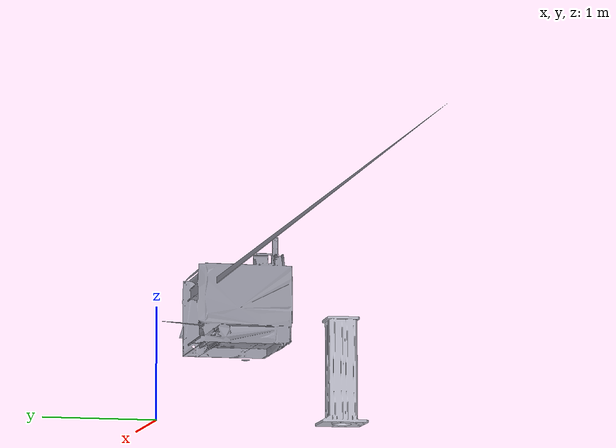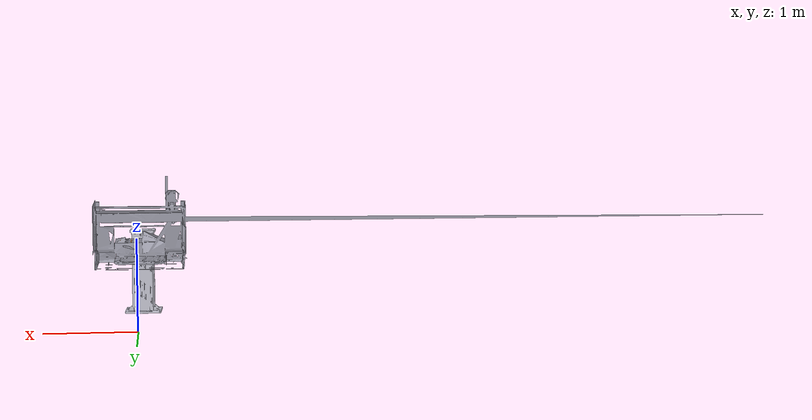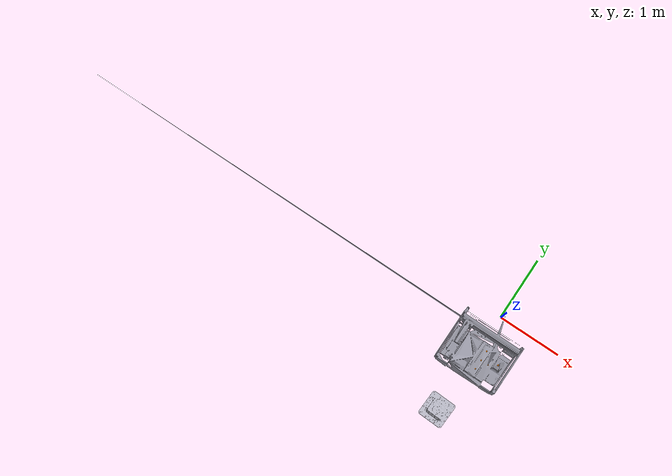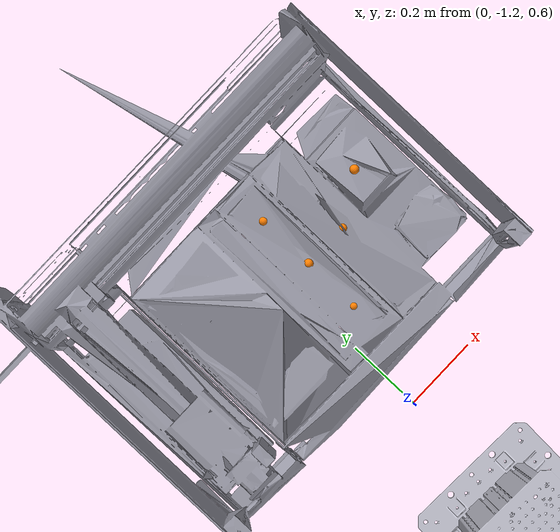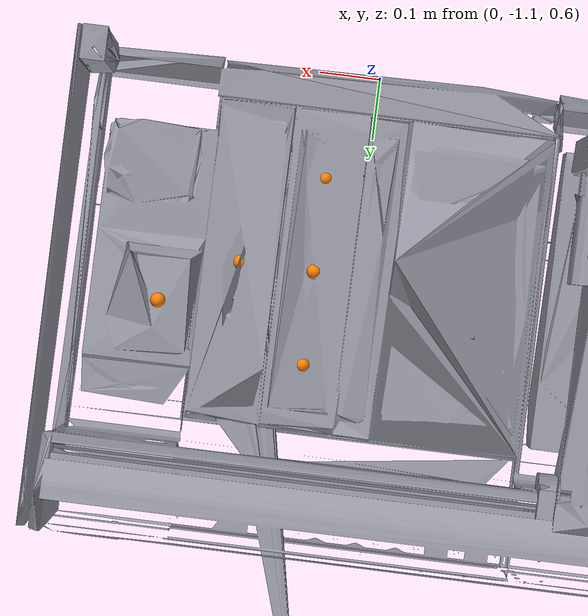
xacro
<?xml version="1.0"?>
<robot xmlns:xacro="http://www.ros.org/wiki/xacro" name="unchained_only">

  <xacro:arg name="deck_offset_x" default="0.0"/>
  <xacro:arg name="deck_offset_y" default="0.0"/>
  <xacro:arg name="deck_offset_z" default="0.0"/>
  <xacro:property name="dx" value="$(arg deck_offset_x)"/>
  <xacro:property name="dy" value="$(arg deck_offset_y)"/>
  <xacro:property name="dz" value="$(arg deck_offset_z)"/>

  <xacro:arg name="device_height" default="0.629675"/>

  <link name="world"/>

  <link name="unchained_junior">
    <visual>
      <origin xyz="0 0 0" rpy="0 0 0"/>
      <geometry>
        <mesh filename="package://unchained_cell/meshes/unchained_junior_visual.stl"
              scale="0.001 0.001 0.001"/>
      </geometry>
      <material name="grey">
        <color rgba="0.6 0.6 0.65 1.0"/>
      </material>
    </visual>
    <collision>
      <origin xyz="0 0 0" rpy="0 0 0"/>
      <geometry>
        <mesh filename="package://unchained_cell/meshes/unchained_junior_collision.stl"
              scale="0.001 0.001 0.001"/>
      </geometry>
    </collision>
  </link>

  <!-- Rotate +90° around X so device's SW Y-up axis aligns with world Z-up.
       Position device CAD origin at device_height above the floor (world z=0). -->
  <joint name="unchained_junior_joint" type="fixed">
    <parent link="world"/>
    <child link="unchained_junior"/>
    <origin xyz="0 0 $(arg device_height)" rpy="1.5708 0 0"/>
  </joint>

  <!-- Deck markers — coordinates in METERS (mm/1000), in SW frame -->
  <xacro:macro name="deck_marker" params="name x y z">
    <link name="${name}">
      <visual>
        <origin xyz="0 0 0" rpy="0 0 0"/>
        <geometry><sphere radius="0.012"/></geometry>
        <material name="${name}_color"><color rgba="1.0 0.5 0 1.0"/></material>
      </visual>
    </link>
    <joint name="${name}_joint" type="fixed">
      <parent link="unchained_junior"/>
      <child link="${name}"/>
      <origin xyz="${x + dx} ${y + dy} ${z + dz}" rpy="0 0 0"/>
    </joint>
  </xacro:macro>

  <!-- Deck 9-10 -->
  <xacro:deck_marker name="deck_9_10_pos1"  x="0.0704" y="0.26992" z="0.92015"/>
  <xacro:deck_marker name="deck_9_10_pos2"  x="0.0704" y="0.26992" z="0.76962"/>
  <xacro:deck_marker name="deck_9_10_pos3"  x="0.0704" y="0.26992" z="0.61915"/>

  <!-- Deck 11-12 Vortex -->
  <xacro:deck_marker name="deck_vortex_pos1" x="0.19001" y="0.26004" z="0.92009"/>
  <xacro:deck_marker name="deck_vortex_pos2" x="0.19001" y="0.26004" z="0.77009"/>
  <xacro:deck_marker name="deck_vortex_pos3" x="0.19001" y="0.26004" z="0.62009"/>

  <!-- Vacuum filtration -->
  <xacro:deck_marker name="deck_vacuum_filtration" x="0.31345" y="0.26956" z="0.69374"/>

  <!-- =============== Vention Pedestal =============== -->
  <xacro:arg name="include_pedestal" default="true"/>

  <xacro:if value="${'$(arg include_pedestal)' == 'true'}">
    <link name="pedestal">
      <inertial>
        <mass value="40.0"/>
        <inertia ixx="3.0" ixy="0" ixz="0" iyy="3.0" iyz="0" izz="3.0"/>
      </inertial>
      <visual>
        <origin xyz="0 0 0" rpy="0 0 0"/>
        <geometry>
          <mesh filename="package://unchained_cell/meshes/vention_pedestal_visual.stl"
                scale="0.001 0.001 0.001"/>
        </geometry>
        <material name="aluminum"><color rgba="0.75 0.75 0.80 1.0"/></material>
      </visual>
      <collision>
        <origin xyz="0 0 0" rpy="0 0 0"/>
        <geometry>
          <mesh filename="package://unchained_cell/meshes/vention_pedestal_collision.stl"
                scale="0.001 0.001 0.001"/>
        </geometry>
      </collision>
    </link>

    <joint name="pedestal_joint" type="fixed">
      <parent link="unchained_junior"/>
      <child link="pedestal"/>
      <origin xyz="0.07398 0.31533 1.26527" rpy="0 0 0"/>
    </joint>
  </xacro:if>

</robot>
